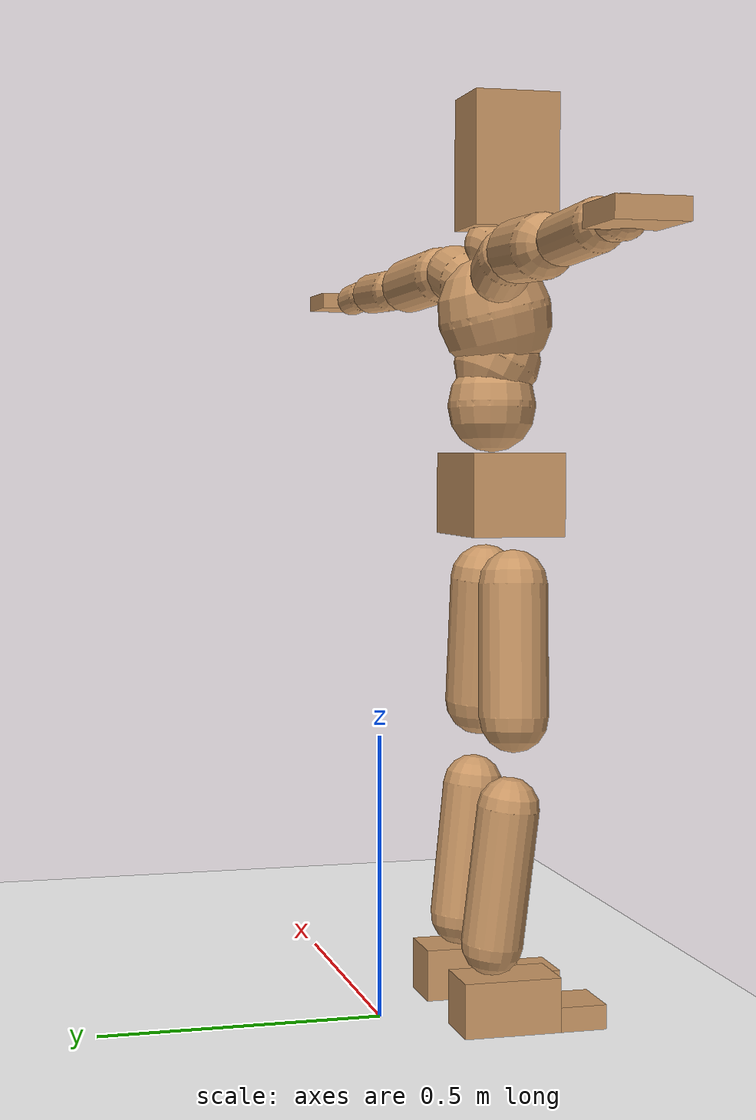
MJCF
<mujoco model="humanoid">
  <option integrator="implicitfast" />

  <visual>
    <global offwidth="1280" offheight="960" />
    <headlight active="1" ambient="0.34 0.34 0.34" diffuse="0.5 0.5 0.5" />
  </visual>

  <default>
    <joint damping="2" stiffness="2" armature="0.01" limited="true" solimplimit="0 .99 .01" />
    <geom condim="1" friction="0.7 0.005 0.0001" solimp=".99 .99 .003" solref="0.015 1" margin="0.001" rgba="0.8 0.6 .4 1" />
    <default class="smplcontact">
      <geom condim="3" friction="1. 0.005 0.0001" solref="0.015 1" solimp="0.98 0.98 0.001" priority="1" />
    </default>
    <default class="stiff_medium">
      <joint stiffness="10" />
    </default>
    <default class="stiff_medium_higher">
      <joint stiffness="50" />
    </default>
    <default class="stiff_high">
      <joint stiffness="100" />
    </default>
  </default>

  <asset>
    <texture type="skybox" builtin="gradient" rgb1="0.99 0.99 0.99" rgb2="0.608 0.828 0.892" width="100" />
    <texture builtin="flat" height="1278" mark="cross" markrgb="1 1 1" name="texgeom" random="0.01" rgb1="0.8 0.6 0.4" rgb2="0.8 0.6 0.4" type="cube" width="127" />
    <texture name="texplane" type="2d" builtin="checker" markrgb="1 1 1" rgb1="0.756 0.772 0.76" rgb2="0.6 0.6 0.6" width="100" height="100" />
    <material name="MatPlane" reflectance="0.5" texture="texplane" texrepeat="1 1" texuniform="true" />
    <material name="geom" texture="texgeom" texuniform="true" />
  </asset>

  <worldbody>
    <light name="tracking_light" pos="0 0 7" dir="0 0 -1" directional="true" cutoff="100" exponent="1" diffuse="1 1 1" specular="0.1 0.1 0.1" mode="trackcom" />
    <camera name="back" pos="0 3 2.4" xyaxes="-1 0 0 0 -1 2" mode="trackcom" />
    <camera name="side" pos="-3 0 2.4" xyaxes="0 -1 0 1 0 2" mode="trackcom" />
    <camera name="front_side" pos="-2.8 -2.8 0.8" xyaxes="0.5 -0.5 0 0.1 0.1 1" mode="trackcom" />
    <geom condim="3" name="floor" pos="0 0 0" rgba="1 1 1 1" size="100 100 .2" type="plane" material="MatPlane" />
    <body name="Pelvis" pos="-0.0018 -0.2233 0.9367" euler="90 0 0">
      <site name="Pelvis" size="0.01" />
      <freejoint name="Pelvis" />
      <geom type="box" pos="-0.0000 -0.0121 -0.0055" size="0.1069 0.0722 0.083" quat="1.0000 0.0000 0.0000 0.0000" density="3165.830099" name="Pelvis" />
      <body name="L_Hip" pos="0.0695 -0.0914 -0.0068">
        <joint name="L_Hip_x" type="hinge" pos="0 0 0" axis="1 0 0" stiffness="10.0" range="-160.0 22.92" class="stiff_medium" damping="15.000000000000004" armature="0.010000000000000005"/>
        <joint name="L_Hip_y" type="hinge" pos="0 0 0" axis="0 1 0" stiffness="10.0" range="-70.0 70.0" class="stiff_medium" damping="10.000000000000002" armature="0.010000000000000007"/>
        <joint name="L_Hip_z" type="hinge" pos="0 0 0" axis="0 0 1" stiffness="10.0" range="-28.65 90.0" class="stiff_medium" damping="9.999999999999998" armature="0.009999999999999998"/>
        <geom type="capsule" density="2040.816327" fromto="0.0069 -0.075 -0.0009 0.0274 -0.3002 -0.0036" size="0.0615" name="L_Hip" />
        <body name="L_Knee" pos="0.0343 -0.3752 -0.0045">
          <joint name="L_Knee_x" type="hinge" pos="0 0 0" axis="1 0 0" range="-5.16 171.89" damping="7.999999999999999" armature="0.009999999999999998" stiffness="2.0"/>
          <joint name="L_Knee_y" type="hinge" pos="0 0 0" axis="0 1 0" range="-4.58 6.88" damping="8.000000000000002" armature="0.010000000000000007" stiffness="2.0"/>
          <joint name="L_Knee_z" type="hinge" pos="0 0 0" axis="0 0 1" range="-6.88 4.58" damping="7.9999999999999964" armature="0.009999999999999992" stiffness="2.0"/>
          <geom type="capsule" density="1234.567901" fromto="-0.0027 -0.0796 -0.0087 -0.0109 -0.3184 -0.035" size="0.0541" name="L_Knee" />
          <body name="L_Ankle" pos="-0.0136 -0.398 -0.0437">
            <joint name="L_Ankle_x" type="hinge" pos="0 0 0" axis="1 0 0" range="-45.84 45.84" class="stiff_medium" damping="6.000000000000061" armature="0.010000000000000205" stiffness="10.0"/>
            <joint name="L_Ankle_y" type="hinge" pos="0 0 0" axis="0 1 0" range="-74.48 22.92" class="stiff_medium" damping="3.000000000000001" armature="0.010000000000000005" stiffness="10.0"/>
            <joint name="L_Ankle_z" type="hinge" pos="0 0 0" axis="0 0 1" range="-4.58 4.58" class="stiff_medium" damping="6.000000000000059" armature="0.010000000000000196" stiffness="10.0"/>
            <geom type="box" pos="0.0233 -0.0239 0.0242" size="0.0483 0.0464 0.085" quat="1.0000 0.0000 0.0000 0.0000" density="449.071558" name="L_Ankle" class="smplcontact" />
            <body name="L_Toe" pos="0.0264 -0.0558 0.1193">
              <joint name="L_Toe_x" type="hinge" pos="0 0 0" axis="1 0 0" range="-91.67 22.92" armature="0.009999999999998252" damping="1.999999999999825" stiffness="2.0"/>
              <joint name="L_Toe_y" type="hinge" pos="0 0 0" axis="0 1 0" range="-4.58 4.58" armature="0.009999999999999976" damping="1.9999999999999976" stiffness="2.0"/>
              <joint name="L_Toe_z" type="hinge" pos="0 0 0" axis="0 0 1" range="-4.58 4.58" armature="0.009999999999997986" damping="1.9999999999997986" stiffness="2.0"/>
              <geom type="box" pos="-0.003 0.0055 0.0248" size="0.0478 0.02 0.0496" quat="1.0000 0.0000 0.0000 0.0000" density="423.206892" name="L_Toe" class="smplcontact" />
            </body>
          </body>
        </body>
      </body>
      <body name="R_Hip" pos="-0.0677 -0.0905 -0.0043">
        <joint name="R_Hip_x" type="hinge" pos="0 0 0" axis="1 0 0" stiffness="10.0" range="-160.0 22.92" class="stiff_medium" damping="15.000000000000004" armature="0.010000000000000005"/>
        <joint name="R_Hip_y" type="hinge" pos="0 0 0" axis="0 1 0" stiffness="10.0" range="-70.0 70.0" class="stiff_medium" damping="10.000000000000002" armature="0.010000000000000007"/>
        <joint name="R_Hip_z" type="hinge" pos="0 0 0" axis="0 0 1" stiffness="10.0" range="-90.0 28.65" class="stiff_medium" damping="9.999999999999998" armature="0.009999999999999998"/>
        <geom type="capsule" density="2040.816327" fromto="-0.0077 -0.0765 -0.0018 -0.0306 -0.3061 -0.0071" size="0.0606" name="R_Hip" />
        <body name="R_Knee" pos="-0.0383 -0.3826 -0.0089">
          <joint name="R_Knee_x" type="hinge" pos="0 0 0" axis="1 0 0" range="-5.16 171.89" damping="7.999999999999999" armature="0.009999999999999998" stiffness="2.0"/>
          <joint name="R_Knee_y" type="hinge" pos="0 0 0" axis="0 1 0" range="-6.88 4.58" damping="8.000000000000002" armature="0.010000000000000007" stiffness="2.0"/>
          <joint name="R_Knee_z" type="hinge" pos="0 0 0" axis="0 0 1" range="-4.58 6.88" damping="7.9999999999999964" armature="0.009999999999999992" stiffness="2.0"/>
          <geom type="capsule" density="1234.567901" fromto="0.0032 -0.0797 -0.0085 0.0126 -0.3187 -0.0338" size="0.0541" name="R_Knee" />
          <body name="R_Ankle" pos="0.0158 -0.3984 -0.0423">
            <joint name="R_Ankle_x" type="hinge" pos="0 0 0" axis="1 0 0" range="-45.84 45.84" class="stiff_medium" damping="6.000000000000061" armature="0.010000000000000205" stiffness="10.0"/>
            <joint name="R_Ankle_y" type="hinge" pos="0 0 0" axis="0 1 0" range="-22.92 74.48" class="stiff_medium" damping="3.000000000000001" armature="0.010000000000000005" stiffness="10.0"/>
            <joint name="R_Ankle_z" type="hinge" pos="0 0 0" axis="0 0 1" range="-4.58 4.58" class="stiff_medium" damping="6.000000000000059" armature="0.010000000000000196" stiffness="10.0"/>
            <geom type="box" pos="-0.0212 -0.0174 0.0256" size="0.0483 0.0478 0.0865" quat="1.0000 0.0000 0.0000 0.0000" density="434.700981" name="R_Ankle" class="smplcontact" />
            <body name="R_Toe" pos="-0.0254 -0.0481 0.1233">
              <joint name="R_Toe_x" type="hinge" pos="0 0 0" axis="1 0 0" range="-91.67 22.92" armature="0.009999999999998252" damping="1.999999999999825" stiffness="2.0"/>
              <joint name="R_Toe_y" type="hinge" pos="0 0 0" axis="0 1 0" range="-4.58 4.58" armature="0.009999999999999976" damping="1.9999999999999976" stiffness="2.0"/>
              <joint name="R_Toe_z" type="hinge" pos="0 0 0" axis="0 0 1" range="-4.58 4.58" armature="0.009999999999997986" damping="1.9999999999997986" stiffness="2.0"/>
              <geom type="box" pos="0.0042 0.0045 0.0227" size="0.0479 0.0216 0.0493" quat="1.0000 0.0000 0.0000 0.0000" density="407.384095" name="R_Toe" class="smplcontact" />
            </body>
          </body>
        </body>
      </body>
      <body name="Torso" pos="-0.00203125 0.0885625 -0.0216938">
        <joint name="Torso_x" type="hinge" pos="0 0 0" axis="1 0 0" range="-25.78 57.3" class="stiff_medium" damping="11.880739165014283" armature="0.007425307526597028" stiffness="8.448701363636367"/>
        <joint name="Torso_y" type="hinge" pos="0 0 0" axis="0 1 0" range="-57.3 57.3" class="stiff_high" damping="18.313438833929084" armature="0.010010288571541515" stiffness="83.75933409090908"/>
        <joint name="Torso_z" type="hinge" pos="0 0 0" axis="0 0 1" range="-34.38 34.38" class="stiff_high" damping="16.412375806654737" armature="0.008247244961913588" stiffness="81.65335238095237"/>
        <geom type="capsule" density="2040.816327" fromto="0.00203125 0.0494 0.00040625 0.0024375 0.0603688 0.0004875" size="0.0769" name="Torso" />
        <body name="Spine" pos="0.00446875 0.10985 0.00089375">
          <joint name="Spine_x" type="hinge" pos="0 0 0" axis="1 0 0" stiffness="8.61836681818182" range="-25.78 57.3" class="stiff_medium" damping="12.472358078670691" armature="0.008022129138043187"/>
          <joint name="Spine_y" type="hinge" pos="0 0 0" axis="0 1 0" stiffness="8.713486428571429" range="-57.3 57.3" class="stiff_high" damping="7.472749203229235" armature="0.010013568677440118"/>
          <joint name="Spine_z" type="hinge" pos="0 0 0" axis="0 0 1" stiffness="17.489684999999998" range="-34.38 34.38" class="stiff_high" damping="10.676458803719726" armature="0.009051904704236655"/>
          <geom type="capsule" density="2040.816327" fromto="0.00056875 0.0193375 0.0092625 0.00065 0.0236438 0.011375" size="0.0755" name="Spine" />
          <body name="Chest" pos="0.00121875 0.0429812 0.0206375">
            <joint name="Chest_x" type="hinge" pos="0 0 0" axis="1 0 0" stiffness="8.995010465116279" range="-25.78 57.3" class="stiff_medium" damping="13.025349818428722" armature="0.00838290608383648"/>
            <joint name="Chest_y" type="hinge" pos="0 0 0" axis="0 1 0" stiffness="9.392454047619047" range="-57.3 57.3" class="stiff_high" damping="7.747805527314299" armature="0.00998615653732873"/>
            <joint name="Chest_z" type="hinge" pos="0 0 0" axis="0 0 1" stiffness="17.839138181818186" range="-34.38 34.38" class="stiff_high" damping="10.978778494294538" armature="0.009384295611260805"/>
            <geom type="capsule" density="2040.816327" fromto="-0.00073125 0.0554125 -0.0140562 -0.0008125 0.0676812 -0.017225" size="0.1002" name="Chest" />
            <body name="Neck" pos="-0.002275 0.173794 -0.0348562">
              <joint name="Neck_x" type="hinge" pos="0 0 0" axis="1 0 0" range="-28.65 57.3" class="stiff_medium_higher" damping="9.877226759024966" armature="0.00995483699467544" stiffness="49.00110795454546"/>
              <joint name="Neck_y" type="hinge" pos="0 0 0" axis="0 1 0" range="-40.11 40.11" class="stiff_medium_higher" damping="9.858738636889928" armature="0.009873525327567207" stiffness="49.21987045454545"/>
              <joint name="Neck_z" type="hinge" pos="0 0 0" axis="0 0 1" range="-40.11 40.11" class="stiff_medium_higher" damping="9.945500547015515" armature="0.009968142295475725" stiffness="49.61455113636364"/>
              <geom type="capsule" density="1000" fromto="0.0008125 0.0105625 0.00836875 0.00333125 0.04225 0.0333937" size="0.0436" name="Neck" />
              <body name="Head" pos="0.0052 0.065 0.0513">
                <joint name="Head_x" type="hinge" pos="0 0 0" axis="1 0 0" range="-28.65 57.3" class="stiff_medium_higher" damping="1.9999999999999991" armature="0.009999999999999992" stiffness="50.0"/>
                <joint name="Head_y" type="hinge" pos="0 0 0" axis="0 1 0" range="-40.11 40.11" class="stiff_medium_higher" damping="2.0" armature="0.010000000000000002" stiffness="50.0"/>
                <joint name="Head_z" type="hinge" pos="0 0 0" axis="0 0 1" range="-40.11 40.11" class="stiff_medium_higher" damping="1.9999999999999942" armature="0.009999999999999943" stiffness="50.0"/>
                <geom type="box" pos="-0.0042 0.0876 -0.0116" size="0.0606 0.1154 0.076" quat="1.0000 0.0000 0.0000 0.0000" density="1018.069894" name="Head" />
                <geom type="capsule" name="nose" size="0.02 0.01" pos="0 0.07 0.05" quat="1 0 0 0" mass="0" contype="0" conaffinity="0" />
              </body>
            </body>
            <body name="L_Thorax" pos="0.0788 0.1217 -0.0341">
              <joint name="L_Thorax_x" type="hinge" pos="0 0 0" axis="1 0 0" range="-10.89 4.58" class="stiff_medium_higher" damping="20.000000000000064" armature="0.010000000000000063" stiffness="50.0"/>
              <joint name="L_Thorax_y" type="hinge" pos="0 0 0" axis="0 1 0" range="-28.65 17.19" class="stiff_medium_higher" damping="20.000000000000004" armature="0.010000000000000005" stiffness="50.0"/>
              <joint name="L_Thorax_z" type="hinge" pos="0 0 0" axis="0 0 1" range="-31.51 40.11" class="stiff_medium_higher" damping="20.000000000000004" armature="0.010000000000000005" stiffness="50.0"/>
              <geom type="capsule" density="1000" fromto="0.0182 0.0061 -0.0018 0.0728 0.0244 -0.0071" size="0.0521" name="L_Thorax" />
              <body name="L_Shoulder" pos="0.091 0.0305 -0.0089">
                <joint name="L_Shoulder_x" type="hinge" pos="0 0 0" axis="1 0 0" range="-97.4 97.4" class="stiff_medium" damping="6.000000000000083" armature="0.010000000000000278" stiffness="10.0"/>
                <joint name="L_Shoulder_y" type="hinge" pos="0 0 0" axis="0 1 0" range="-108.86 80.21" class="stiff_medium" damping="5.999999999999999" armature="0.009999999999999998" stiffness="10.0"/>
                <joint name="L_Shoulder_z" type="hinge" pos="0 0 0" axis="0 0 1" range="-97.4 85.94" class="stiff_medium" damping="6.000000000000003" armature="0.01000000000000001" stiffness="10.0"/>
                <geom type="capsule" density="1000" fromto="0.0519 -0.0026 -0.0055 0.2077 -0.0102 -0.022" size="0.0517" name="L_Shoulder" />
                <body name="L_Elbow" pos="0.2596 -0.0128 -0.0275">
                  <joint name="L_Elbow_x" type="hinge" pos="0 0 0" axis="1 0 0" range="-17.19 4.58" damping="4.99999999999993" armature="0.009999999999999721" stiffness="2.0"/>
                  <joint name="L_Elbow_y" type="hinge" pos="0 0 0" axis="0 1 0" range="-180.0 17.19" damping="5.000000000000002" armature="0.01000000000000001" stiffness="2.0"/>
                  <joint name="L_Elbow_z" type="hinge" pos="0 0 0" axis="0 0 1" range="-100.84 4.58" damping="5.0" armature="0.010000000000000002" stiffness="2.0"/>
                  <geom type="capsule" density="1000" fromto="0.0498 0.0018 -0.0002 0.1994 0.0072 -0.0009" size="0.0405" name="L_Elbow" />
                  <body name="L_Wrist" pos="0.2492 0.009 -0.0012">
                    <joint name="L_Wrist_x" type="hinge" pos="0 0 0" axis="1 0 0" range="-180.0 22.92" armature="0.009999999999999681" damping="1.999999999999968" stiffness="2.0"/>
                    <joint name="L_Wrist_y" type="hinge" pos="0 0 0" axis="0 1 0" range="-17.19 17.19" armature="0.009999999999999946" damping="1.9999999999999944" stiffness="2.0"/>
                    <joint name="L_Wrist_z" type="hinge" pos="0 0 0" axis="0 0 1" range="-22.92 22.92" armature="0.010000000000000026" damping="2.0000000000000027" stiffness="2.0"/>
                    <geom type="capsule" density="1000" fromto="0.0168 -0.0016 -0.003 0.0672 -0.0065 -0.012" size="0.0318" name="L_Wrist" class="smplcontact" />
                    <body name="L_Hand" pos="0.084 -0.0082 -0.0149">
                      <joint name="L_Hand_x" type="hinge" pos="0 0 0" axis="1 0 0" range="-17.19 17.19" armature="0.010000000000000103" damping="2.00000000000001" stiffness="2.0"/>
                      <joint name="L_Hand_y" type="hinge" pos="0 0 0" axis="0 1 0" range="-51.57 51.57" armature="0.010000000000000009" damping="2.000000000000001" stiffness="2.0"/>
                      <joint name="L_Hand_z" type="hinge" pos="0 0 0" axis="0 0 1" range="-91.67 91.67" armature="0.010000000000000267" damping="2.0000000000000266" stiffness="2.0"/>
                      <geom type="box" pos="0.0493 0.001 -0.0058" size="0.0585 0.0158 0.0538" quat="1.0000 0.0000 0.0000 0.0000" density="400.552564" name="L_Hand" class="smplcontact" />
                    </body>
                  </body>
                </body>
              </body>
            </body>
            <body name="R_Thorax" pos="-0.0818 0.1188 -0.0386">
              <joint name="R_Thorax_x" type="hinge" pos="0 0 0" axis="1 0 0" range="-10.89 4.58" class="stiff_medium_higher" damping="20.000000000000064" armature="0.010000000000000063" stiffness="50.0"/>
              <joint name="R_Thorax_y" type="hinge" pos="0 0 0" axis="0 1 0" range="-17.19 28.65" class="stiff_medium_higher" damping="20.000000000000004" armature="0.010000000000000005" stiffness="50.0"/>
              <joint name="R_Thorax_z" type="hinge" pos="0 0 0" axis="0 0 1" range="-40.11 31.51" class="stiff_medium_higher" damping="20.000000000000004" armature="0.010000000000000005" stiffness="50.0"/>
              <geom type="capsule" density="1000" fromto="-0.0192 0.0065 -0.0018 -0.0768 0.026 -0.0073" size="0.0511" name="R_Thorax" />
              <body name="R_Shoulder" pos="-0.096 0.0326 -0.0091">
                <joint name="R_Shoulder_x" type="hinge" pos="0 0 0" axis="1 0 0" range="-97.4 97.4" class="stiff_medium" damping="6.000000000000083" armature="0.010000000000000278" stiffness="10.0"/>
                <joint name="R_Shoulder_y" type="hinge" pos="0 0 0" axis="0 1 0" range="-80.21 108.86" class="stiff_medium" damping="5.999999999999999" armature="0.009999999999999998" stiffness="10.0"/>
                <joint name="R_Shoulder_z" type="hinge" pos="0 0 0" axis="0 0 1" range="-85.94 97.4" class="stiff_medium" damping="6.000000000000003" armature="0.01000000000000001" stiffness="10.0"/>
                <geom type="capsule" density="1000" fromto="-0.0507 -0.0027 -0.0043 -0.203 -0.0107 -0.0171" size="0.0531" name="R_Shoulder" />
                <body name="R_Elbow" pos="-0.2537 -0.0133 -0.0214">
                  <joint name="R_Elbow_x" type="hinge" pos="0 0 0" axis="1 0 0" range="-17.19 4.58" damping="4.99999999999993" armature="0.009999999999999721" stiffness="2.0"/>
                  <joint name="R_Elbow_y" type="hinge" pos="0 0 0" axis="0 1 0" range="-17.19 180.0" damping="5.000000000000002" armature="0.01000000000000001" stiffness="2.0"/>
                  <joint name="R_Elbow_z" type="hinge" pos="0 0 0" axis="0 0 1" range="-4.58 100.84" damping="5.0" armature="0.010000000000000002" stiffness="2.0"/>
                  <geom type="capsule" density="1000" fromto="-0.0511 0.0016 -0.0011 -0.2042 0.0062 -0.0044" size="0.0408" name="R_Elbow" />
                  <body name="R_Wrist" pos="-0.2553 0.0078 -0.0056">
                    <joint name="R_Wrist_x" type="hinge" pos="0 0 0" axis="1 0 0" range="-180.0 22.92" armature="0.009999999999999681" damping="1.999999999999968" stiffness="2.0"/>
                    <joint name="R_Wrist_y" type="hinge" pos="0 0 0" axis="0 1 0" range="-17.19 17.19" armature="0.009999999999999946" damping="1.9999999999999944" stiffness="2.0"/>
                    <joint name="R_Wrist_z" type="hinge" pos="0 0 0" axis="0 0 1" range="-22.92 22.92" armature="0.010000000000000026" damping="2.0000000000000027" stiffness="2.0"/>
                    <geom type="capsule" density="1000" fromto="-0.0169 -0.0012 -0.0021 -0.0677 -0.0049 -0.0083" size="0.0326" name="R_Wrist" class="smplcontact" />
                    <body name="R_Hand" pos="-0.0846 -0.0061 -0.0103">
                      <joint name="R_Hand_x" type="hinge" pos="0 0 0" axis="1 0 0" range="-17.19 17.19" armature="0.010000000000000103" damping="2.00000000000001" stiffness="2.0"/>
                      <joint name="R_Hand_y" type="hinge" pos="0 0 0" axis="0 1 0" range="-51.57 51.57" armature="0.010000000000000009" damping="2.000000000000001" stiffness="2.0"/>
                      <joint name="R_Hand_z" type="hinge" pos="0 0 0" axis="0 0 1" range="-91.67 91.67" armature="0.010000000000000267" damping="2.0000000000000266" stiffness="2.0"/>
                      <geom type="box" pos="-0.0462 -0.0009 -0.0079" size="0.0569 0.0164 0.0546" quat="1.0000 0.0000 0.0000 0.0000" density="403.679611" name="R_Hand" class="smplcontact" />
                    </body>
                  </body>
                </body>
              </body>
            </body>
          </body>
        </body>
      </body>
    </body>
  </worldbody>
  <actuator>
    <general name="L_Hip_x" joint="L_Hip_x" biastype="affine" gainprm="287.33006409732246" biasprm="-215.3247604770444 -180.0 -2.0000000000000004" ctrllimited="true" ctrlrange="-1 1" forcerange="-360.0 360.0" />
    <general name="L_Hip_y" joint="L_Hip_y" biastype="affine" gainprm="219.9114857512855" biasprm="0.0 -180.0 -2.0000000000000004" ctrllimited="true" ctrlrange="-1 1" forcerange="-360.0 360.0" />
    <general name="L_Hip_z" joint="L_Hip_z" biastype="affine" gainprm="186.3749841742145" biasprm="96.3683546488669 -180.0 -1.9999999999999998" ctrllimited="true" ctrlrange="-1 1" forcerange="-360.0 360.0" />
    <general name="L_Knee_x" joint="L_Knee_x" biastype="affine" gainprm="278.10948965903646" biasprm="261.8988715665131 -180.0 -1.9999999999999998" ctrllimited="true" ctrlrange="-1 1" forcerange="-360.0 360.0" />
    <general name="L_Knee_y" joint="L_Knee_y" biastype="affine" gainprm="18.001325905069514" biasprm="3.612831551628262 -180.0 -2.0000000000000004" ctrllimited="true" ctrlrange="-1 1" forcerange="-360.0 360.0" />
    <general name="L_Knee_z" joint="L_Knee_z" biastype="affine" gainprm="18.001325905069514" biasprm="-3.612831551628262 -180.0 -1.9999999999999991" ctrllimited="true" ctrlrange="-1 1" forcerange="-360.0 360.0" />
    <general name="L_Ankle_x" joint="L_Ankle_x" biastype="affine" gainprm="72.00530362027807" biasprm="0.0 -90.0 -2.0000000000000204" ctrllimited="true" ctrlrange="-1 1" forcerange="-180.0 180.0" />
    <general name="L_Ankle_y" joint="L_Ankle_y" biastype="affine" gainprm="76.49778111491148" biasprm="-40.49512930477244 -90.0 -2.0000000000000004" ctrllimited="true" ctrlrange="-1 1" forcerange="-180.0 180.0" />
    <general name="L_Ankle_z" joint="L_Ankle_z" biastype="affine" gainprm="7.1942471767206255" biasprm="0.0 -90.0 -2.0000000000000195" ctrllimited="true" ctrlrange="-1 1" forcerange="-180.0 180.0" />
    <general name="L_Toe_x" joint="L_Toe_x" biastype="affine" gainprm="71.99902043497087" biasprm="-43.19689898685965 -72.0 -0.7999999999999301" ctrllimited="true" ctrlrange="-1 1" forcerange="-144.0 144.0" />
    <general name="L_Toe_y" joint="L_Toe_y" biastype="affine" gainprm="5.755397741376501" biasprm="0.0 -72.0 -0.799999999999999" ctrllimited="true" ctrlrange="-1 1" forcerange="-144.0 144.0" />
    <general name="L_Toe_z" joint="L_Toe_z" biastype="affine" gainprm="5.755397741376501" biasprm="0.0 -72.0 -0.7999999999999194" ctrllimited="true" ctrlrange="-1 1" forcerange="-144.0 144.0" />
    <general name="R_Hip_x" joint="R_Hip_x" biastype="affine" gainprm="287.33006409732246" biasprm="-215.3247604770444 -180.0 -2.0000000000000004" ctrllimited="true" ctrlrange="-1 1" forcerange="-360.0 360.0" />
    <general name="R_Hip_y" joint="R_Hip_y" biastype="affine" gainprm="219.9114857512855" biasprm="0.0 -180.0 -2.0000000000000004" ctrllimited="true" ctrlrange="-1 1" forcerange="-360.0 360.0" />
    <general name="R_Hip_z" joint="R_Hip_z" biastype="affine" gainprm="186.3749841742145" biasprm="-96.3683546488669 -180.0 -1.9999999999999998" ctrllimited="true" ctrlrange="-1 1" forcerange="-360.0 360.0" />
    <general name="R_Knee_x" joint="R_Knee_x" biastype="affine" gainprm="278.10948965903646" biasprm="261.8988715665131 -180.0 -1.9999999999999998" ctrllimited="true" ctrlrange="-1 1" forcerange="-360.0 360.0" />
    <general name="R_Knee_y" joint="R_Knee_y" biastype="affine" gainprm="18.001325905069514" biasprm="-3.612831551628262 -180.0 -2.0000000000000004" ctrllimited="true" ctrlrange="-1 1" forcerange="-360.0 360.0" />
    <general name="R_Knee_z" joint="R_Knee_z" biastype="affine" gainprm="18.001325905069514" biasprm="3.612831551628262 -180.0 -1.9999999999999991" ctrllimited="true" ctrlrange="-1 1" forcerange="-360.0 360.0" />
    <general name="R_Ankle_x" joint="R_Ankle_x" biastype="affine" gainprm="72.00530362027807" biasprm="0.0 -90.0 -2.0000000000000204" ctrllimited="true" ctrlrange="-1 1" forcerange="-180.0 180.0" />
    <general name="R_Ankle_y" joint="R_Ankle_y" biastype="affine" gainprm="76.49778111491148" biasprm="40.49512930477244 -90.0 -2.0000000000000004" ctrllimited="true" ctrlrange="-1 1" forcerange="-180.0 180.0" />
    <general name="R_Ankle_z" joint="R_Ankle_z" biastype="affine" gainprm="7.1942471767206255" biasprm="0.0 -90.0 -2.0000000000000195" ctrllimited="true" ctrlrange="-1 1" forcerange="-180.0 180.0" />
    <general name="R_Toe_x" joint="R_Toe_x" biastype="affine" gainprm="71.99902043497087" biasprm="-43.19689898685965 -72.0 -0.7999999999999301" ctrllimited="true" ctrlrange="-1 1" forcerange="-144.0 144.0" />
    <general name="R_Toe_y" joint="R_Toe_y" biastype="affine" gainprm="5.755397741376501" biasprm="0.0 -72.0 -0.799999999999999" ctrllimited="true" ctrlrange="-1 1" forcerange="-144.0 144.0" />
    <general name="R_Toe_z" joint="R_Toe_z" biastype="affine" gainprm="5.755397741376501" biasprm="0.0 -72.0 -0.7999999999999194" ctrllimited="true" ctrlrange="-1 1" forcerange="-144.0 144.0" />
    <general name="Torso_x" joint="Torso_x" biastype="affine" gainprm="147.00938503799722" biasprm="55.774383923900714 -202.76883272727278 -3.1681971106704756" ctrllimited="true" ctrlrange="-1 1" forcerange="-304.1532490909092 304.1532490909092" />
    <general name="Torso_y" joint="Torso_y" biastype="affine" gainprm="201.0372094082738" biasprm="0.0 -201.02240181818178 -3.662687766785817" ctrllimited="true" ctrlrange="-1 1" forcerange="-301.5336027272727 301.5336027272727" />
    <general name="Torso_z" joint="Torso_z" biastype="affine" gainprm="117.58948859608061" biasprm="0.0 -195.9680457142857 -3.282475161330947" ctrllimited="true" ctrlrange="-1 1" forcerange="-293.9520685714285 293.9520685714285" />
    <general name="Spine_x" joint="Spine_x" biastype="affine" gainprm="149.96160373544967" biasprm="56.89443608258753 -206.84080363636363 -3.3259621543121844" ctrllimited="true" ctrlrange="-1 1" forcerange="-310.26120545454546 310.26120545454546" />
    <general name="Spine_y" joint="Spine_y" biastype="affine" gainprm="209.13907862681933" biasprm="0.0 -209.1236742857143 -3.7363746016146173" ctrllimited="true" ctrlrange="-1 1" forcerange="-313.68551142857143 313.68551142857143" />
    <general name="Spine_z" joint="Spine_z" biastype="affine" gainprm="125.9350078648023" biasprm="0.0 -209.87622 -3.5588196012399083" ctrllimited="true" ctrlrange="-1 1" forcerange="-314.81433 314.81433" />
    <general name="Chest_x" joint="Chest_x" biastype="affine" gainprm="156.51529151906803" biasprm="59.380861683690696 -215.8802511627907 -3.473426618247659" ctrllimited="true" ctrlrange="-1 1" forcerange="-323.82037674418604 323.82037674418604" />
    <general name="Chest_y" joint="Chest_y" biastype="affine" gainprm="225.43550181277303" biasprm="0.0 -225.41889714285713 -3.8739027636571497" ctrllimited="true" ctrlrange="-1 1" forcerange="-338.12834571428573 338.12834571428573" />
    <general name="Chest_z" joint="Chest_z" biastype="affine" gainprm="128.45125611059137" biasprm="0.0 -214.06965818181823 -3.659592831431513" ctrllimited="true" ctrlrange="-1 1" forcerange="-321.10448727272734 321.10448727272734" />
    <general name="Neck_x" joint="Neck_x" biastype="affine" gainprm="26.462547419978012" biasprm="8.82084913999267 -35.280797727272734 -0.7901781407219973" ctrllimited="true" ctrlrange="-1 1" forcerange="-70.56159545454547 70.56159545454547" />
    <general name="Neck_y" joint="Neck_y" biastype="affine" gainprm="24.80864201361209" biasprm="0.0 -35.438306727272725 -0.7886990909511943" ctrllimited="true" ctrlrange="-1 1" forcerange="-70.87661345454545 70.87661345454545" />
    <general name="Neck_z" joint="Neck_z" biastype="affine" gainprm="25.007575729903728" biasprm="0.0 -35.72247681818182 -0.7956400437612412" ctrllimited="true" ctrlrange="-1 1" forcerange="-71.44495363636364 71.44495363636364" />
    <general name="Head_x" joint="Head_x" biastype="affine" gainprm="18.001325905069514" biasprm="6.000441968356505 -24.0 -0.7999999999999997" ctrllimited="true" ctrlrange="-1 1" forcerange="-48.0 48.0" />
    <general name="Head_y" joint="Head_y" biastype="affine" gainprm="16.801237511398213" biasprm="0.0 -24.0 -0.8" ctrllimited="true" ctrlrange="-1 1" forcerange="-48.0 48.0" />
    <general name="Head_z" joint="Head_z" biastype="affine" gainprm="16.801237511398213" biasprm="0.0 -24.0 -0.7999999999999977" ctrllimited="true" ctrlrange="-1 1" forcerange="-48.0 48.0" />
    <general name="L_Thorax_x" joint="L_Thorax_x" biastype="affine" gainprm="16.200146117011364" biasprm="-6.6078165480505335 -120.0 -1.600000000000005" ctrllimited="true" ctrlrange="-1 1" forcerange="-240.0 240.0" />
    <general name="L_Thorax_y" joint="L_Thorax_y" biastype="affine" gainprm="48.00353574685204" biasprm="-12.00088393671301 -120.0 -1.6000000000000005" ctrllimited="true" ctrlrange="-1 1" forcerange="-240.0 240.0" />
    <general name="L_Thorax_z" joint="L_Thorax_z" biastype="affine" gainprm="75.00028861670033" biasprm="9.00589894029074 -120.0 -1.6000000000000005" ctrllimited="true" ctrlrange="-1 1" forcerange="-240.0 240.0" />
    <general name="L_Shoulder_x" joint="L_Shoulder_x" biastype="affine" gainprm="81.5976331892389" biasprm="0.0 -48.0 -1.600000000000022" ctrllimited="true" ctrlrange="-1 1" forcerange="-96.0 96.0" />
    <general name="L_Shoulder_y" joint="L_Shoulder_y" biastype="affine" gainprm="79.19745640189629" biasprm="-12.00088393671301 -48.0 -1.5999999999999999" ctrllimited="true" ctrlrange="-1 1" forcerange="-96.0 96.0" />
    <general name="L_Shoulder_z" joint="L_Shoulder_z" biastype="affine" gainprm="76.79727961455369" biasprm="-4.800353574685214 -48.0 -1.6000000000000008" ctrllimited="true" ctrlrange="-1 1" forcerange="-96.0 96.0" />
    <general name="L_Elbow_x" joint="L_Elbow_x" biastype="affine" gainprm="13.67849441372996" biasprm="-7.923096672353461 -72.0 -0.7999999999999888" ctrllimited="true" ctrlrange="-1 1" forcerange="-144.0 144.0" />
    <general name="L_Elbow_y" joint="L_Elbow_y" biastype="affine" gainprm="123.89813107227425" biasprm="-102.29653998619085 -72.0 -0.8000000000000004" ctrllimited="true" ctrlrange="-1 1" forcerange="-144.0 144.0" />
    <general name="L_Elbow_z" joint="L_Elbow_z" biastype="affine" gainprm="66.23733950828719" biasprm="-60.4819417669107 -72.0 -0.8" ctrllimited="true" ctrlrange="-1 1" forcerange="-144.0 144.0" />
    <general name="L_Wrist_x" joint="L_Wrist_x" biastype="affine" gainprm="21.24973270888136" biasprm="-16.449379134196157 -12.0 -0.7999999999999873" ctrllimited="true" ctrlrange="-1 1" forcerange="-24.0 24.0" />
    <general name="L_Wrist_y" joint="L_Wrist_y" biastype="affine" gainprm="3.6002651810139037" biasprm="0.0 -12.0 -0.7999999999999978" ctrllimited="true" ctrlrange="-1 1" forcerange="-24.0 24.0" />
    <general name="L_Wrist_z" joint="L_Wrist_z" biastype="affine" gainprm="4.800353574685205" biasprm="0.0 -12.0 -0.8000000000000012" ctrllimited="true" ctrlrange="-1 1" forcerange="-24.0 24.0" />
    <general name="L_Hand_x" joint="L_Hand_x" biastype="affine" gainprm="3.6002651810139037" biasprm="0.0 -12.0 -0.8000000000000042" ctrllimited="true" ctrlrange="-1 1" forcerange="-24.0 24.0" />
    <general name="L_Hand_y" joint="L_Hand_y" biastype="affine" gainprm="10.800795543041708" biasprm="0.0 -12.0 -0.8000000000000004" ctrllimited="true" ctrlrange="-1 1" forcerange="-24.0 24.0" />
    <general name="L_Hand_z" joint="L_Hand_z" biastype="affine" gainprm="19.199319903638422" biasprm="0.0 -12.0 -0.8000000000000107" ctrllimited="true" ctrlrange="-1 1" forcerange="-24.0 24.0" />
    <general name="R_Thorax_x" joint="R_Thorax_x" biastype="affine" gainprm="16.200146117011364" biasprm="-6.6078165480505335 -120.0 -1.600000000000005" ctrllimited="true" ctrlrange="-1 1" forcerange="-240.0 240.0" />
    <general name="R_Thorax_y" joint="R_Thorax_y" biastype="affine" gainprm="48.00353574685204" biasprm="12.000883936713002 -120.0 -1.6000000000000005" ctrllimited="true" ctrlrange="-1 1" forcerange="-240.0 240.0" />
    <general name="R_Thorax_z" joint="R_Thorax_z" biastype="affine" gainprm="75.00028861670033" biasprm="-9.00589894029074 -120.0 -1.6000000000000005" ctrllimited="true" ctrlrange="-1 1" forcerange="-240.0 240.0" />
    <general name="R_Shoulder_x" joint="R_Shoulder_x" biastype="affine" gainprm="81.5976331892389" biasprm="0.0 -48.0 -1.600000000000022" ctrllimited="true" ctrlrange="-1 1" forcerange="-96.0 96.0" />
    <general name="R_Shoulder_y" joint="R_Shoulder_y" biastype="affine" gainprm="79.19745640189629" biasprm="12.00088393671301 -48.0 -1.5999999999999999" ctrllimited="true" ctrlrange="-1 1" forcerange="-96.0 96.0" />
    <general name="R_Shoulder_z" joint="R_Shoulder_z" biastype="affine" gainprm="76.79727961455369" biasprm="4.800353574685204 -48.0 -1.6000000000000008" ctrllimited="true" ctrlrange="-1 1" forcerange="-96.0 96.0" />
    <general name="R_Elbow_x" joint="R_Elbow_x" biastype="affine" gainprm="13.67849441372996" biasprm="-7.923096672353461 -72.0 -0.7999999999999888" ctrllimited="true" ctrlrange="-1 1" forcerange="-144.0 144.0" />
    <general name="R_Elbow_y" joint="R_Elbow_y" biastype="affine" gainprm="123.89813107227425" biasprm="102.29653998619085 -72.0 -0.8000000000000004" ctrllimited="true" ctrlrange="-1 1" forcerange="-144.0 144.0" />
    <general name="R_Elbow_z" joint="R_Elbow_z" biastype="affine" gainprm="66.23733950828719" biasprm="60.481941766910694 -72.0 -0.8" ctrllimited="true" ctrlrange="-1 1" forcerange="-144.0 144.0" />
    <general name="R_Wrist_x" joint="R_Wrist_x" biastype="affine" gainprm="21.24973270888136" biasprm="-16.449379134196157 -12.0 -0.7999999999999873" ctrllimited="true" ctrlrange="-1 1" forcerange="-24.0 24.0" />
    <general name="R_Wrist_y" joint="R_Wrist_y" biastype="affine" gainprm="3.6002651810139037" biasprm="0.0 -12.0 -0.7999999999999978" ctrllimited="true" ctrlrange="-1 1" forcerange="-24.0 24.0" />
    <general name="R_Wrist_z" joint="R_Wrist_z" biastype="affine" gainprm="4.800353574685205" biasprm="0.0 -12.0 -0.8000000000000012" ctrllimited="true" ctrlrange="-1 1" forcerange="-24.0 24.0" />
    <general name="R_Hand_x" joint="R_Hand_x" biastype="affine" gainprm="3.6002651810139037" biasprm="0.0 -12.0 -0.8000000000000042" ctrllimited="true" ctrlrange="-1 1" forcerange="-24.0 24.0" />
    <general name="R_Hand_y" joint="R_Hand_y" biastype="affine" gainprm="10.800795543041708" biasprm="0.0 -12.0 -0.8000000000000004" ctrllimited="true" ctrlrange="-1 1" forcerange="-24.0 24.0" />
    <general name="R_Hand_z" joint="R_Hand_z" biastype="affine" gainprm="19.199319903638422" biasprm="0.0 -12.0 -0.8000000000000107" ctrllimited="true" ctrlrange="-1 1" forcerange="-24.0 24.0" />
  </actuator>
  <contact>
    <exclude body1="Torso" body2="Chest" />
    <exclude body1="Head" body2="Chest" />
    <exclude body1="R_Knee" body2="R_Toe" />
    <exclude body1="R_Knee" body2="L_Ankle" />
    <exclude body1="R_Knee" body2="L_Toe" />
    <exclude body1="L_Knee" body2="L_Toe" />
    <exclude body1="L_Knee" body2="R_Ankle" />
    <exclude body1="L_Knee" body2="R_Toe" />
    <exclude body1="L_Shoulder" body2="Chest" />
    <exclude body1="R_Shoulder" body2="Chest" />
  </contact>
  <sensor>
    <framelinvel name="sensor_Pelvis_framelinvel" objtype="xbody" objname="Pelvis" />
    <framelinvel name="sensor_L_Hip_framelinvel" objtype="xbody" objname="L_Hip" />
    <framelinvel name="sensor_L_Knee_framelinvel" objtype="xbody" objname="L_Knee" />
    <framelinvel name="sensor_L_Ankle_framelinvel" objtype="xbody" objname="L_Ankle" />
    <framelinvel name="sensor_L_Toe_framelinvel" objtype="xbody" objname="L_Toe" />
    <framelinvel name="sensor_R_Hip_framelinvel" objtype="xbody" objname="R_Hip" />
    <framelinvel name="sensor_R_Knee_framelinvel" objtype="xbody" objname="R_Knee" />
    <framelinvel name="sensor_R_Ankle_framelinvel" objtype="xbody" objname="R_Ankle" />
    <framelinvel name="sensor_R_Toe_framelinvel" objtype="xbody" objname="R_Toe" />
    <framelinvel name="sensor_Torso_framelinvel" objtype="xbody" objname="Torso" />
    <framelinvel name="sensor_Spine_framelinvel" objtype="xbody" objname="Spine" />
    <framelinvel name="sensor_Chest_framelinvel" objtype="xbody" objname="Chest" />
    <framelinvel name="sensor_Neck_framelinvel" objtype="xbody" objname="Neck" />
    <framelinvel name="sensor_Head_framelinvel" objtype="xbody" objname="Head" />
    <framelinvel name="sensor_L_Thorax_framelinvel" objtype="xbody" objname="L_Thorax" />
    <framelinvel name="sensor_L_Shoulder_framelinvel" objtype="xbody" objname="L_Shoulder" />
    <framelinvel name="sensor_L_Elbow_framelinvel" objtype="xbody" objname="L_Elbow" />
    <framelinvel name="sensor_L_Wrist_framelinvel" objtype="xbody" objname="L_Wrist" />
    <framelinvel name="sensor_L_Hand_framelinvel" objtype="xbody" objname="L_Hand" />
    <framelinvel name="sensor_R_Thorax_framelinvel" objtype="xbody" objname="R_Thorax" />
    <framelinvel name="sensor_R_Shoulder_framelinvel" objtype="xbody" objname="R_Shoulder" />
    <framelinvel name="sensor_R_Elbow_framelinvel" objtype="xbody" objname="R_Elbow" />
    <framelinvel name="sensor_R_Wrist_framelinvel" objtype="xbody" objname="R_Wrist" />
    <framelinvel name="sensor_R_Hand_framelinvel" objtype="xbody" objname="R_Hand" />
    <frameangvel name="sensor_Pelvis_frameangvel" objtype="xbody" objname="Pelvis" />
    <frameangvel name="sensor_L_Hip_frameangvel" objtype="xbody" objname="L_Hip" />
    <frameangvel name="sensor_L_Knee_frameangvel" objtype="xbody" objname="L_Knee" />
    <frameangvel name="sensor_L_Ankle_frameangvel" objtype="xbody" objname="L_Ankle" />
    <frameangvel name="sensor_L_Toe_frameangvel" objtype="xbody" objname="L_Toe" />
    <frameangvel name="sensor_R_Hip_frameangvel" objtype="xbody" objname="R_Hip" />
    <frameangvel name="sensor_R_Knee_frameangvel" objtype="xbody" objname="R_Knee" />
    <frameangvel name="sensor_R_Ankle_frameangvel" objtype="xbody" objname="R_Ankle" />
    <frameangvel name="sensor_R_Toe_frameangvel" objtype="xbody" objname="R_Toe" />
    <frameangvel name="sensor_Torso_frameangvel" objtype="xbody" objname="Torso" />
    <frameangvel name="sensor_Spine_frameangvel" objtype="xbody" objname="Spine" />
    <frameangvel name="sensor_Chest_frameangvel" objtype="xbody" objname="Chest" />
    <frameangvel name="sensor_Neck_frameangvel" objtype="xbody" objname="Neck" />
    <frameangvel name="sensor_Head_frameangvel" objtype="xbody" objname="Head" />
    <frameangvel name="sensor_L_Thorax_frameangvel" objtype="xbody" objname="L_Thorax" />
    <frameangvel name="sensor_L_Shoulder_frameangvel" objtype="xbody" objname="L_Shoulder" />
    <frameangvel name="sensor_L_Elbow_frameangvel" objtype="xbody" objname="L_Elbow" />
    <frameangvel name="sensor_L_Wrist_frameangvel" objtype="xbody" objname="L_Wrist" />
    <frameangvel name="sensor_L_Hand_frameangvel" objtype="xbody" objname="L_Hand" />
    <frameangvel name="sensor_R_Thorax_frameangvel" objtype="xbody" objname="R_Thorax" />
    <frameangvel name="sensor_R_Shoulder_frameangvel" objtype="xbody" objname="R_Shoulder" />
    <frameangvel name="sensor_R_Elbow_frameangvel" objtype="xbody" objname="R_Elbow" />
    <frameangvel name="sensor_R_Wrist_frameangvel" objtype="xbody" objname="R_Wrist" />
    <frameangvel name="sensor_R_Hand_frameangvel" objtype="xbody" objname="R_Hand" />
    <subtreelinvel name="Chest_subtreelinvel" body="Chest" />
    <gyro name="Pelvis_gyro" site="Pelvis" />
  </sensor>
</mujoco>
